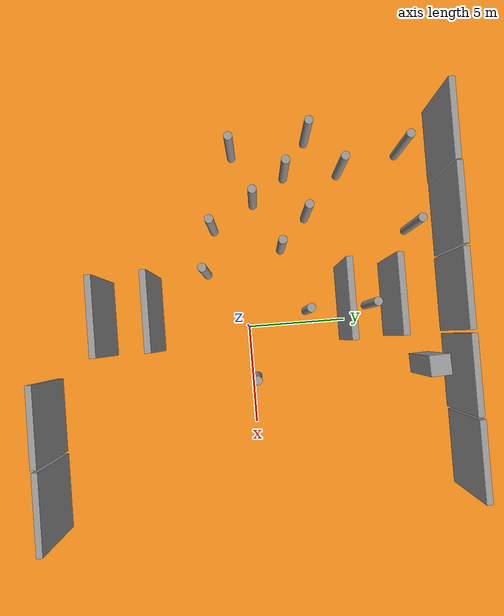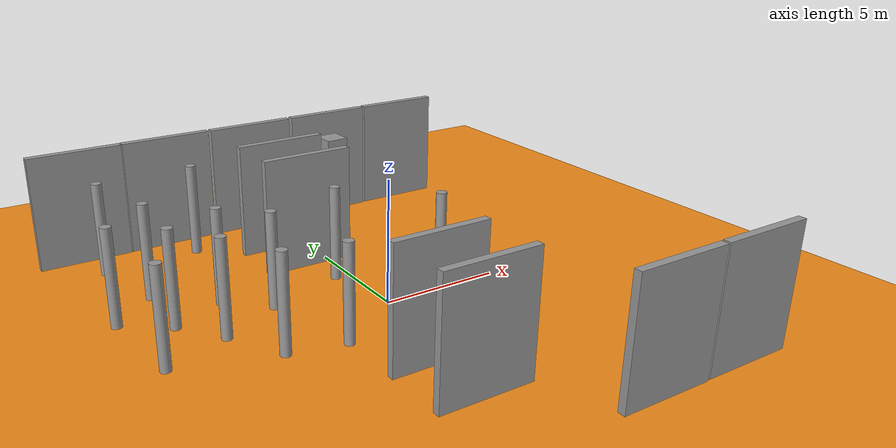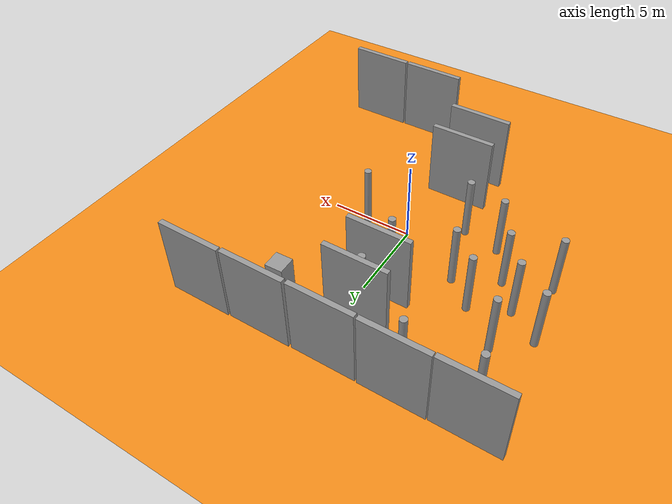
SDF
<sdf version="1.7">
 <world name="default">
  <model name="ground_plane">
   <static>1</static>
   <link name="link">
    <collision name="collision">
     <geometry><plane><normal>0 0 1</normal><size>100 100</size></plane></geometry>
     <surface>
      <contact><collide_bitmask>65535</collide_bitmask></contact>
      <friction><ode><mu>100</mu><mu2>50</mu2></ode></friction>
     </surface>
    </collision>
    <visual name="visual">
     <cast_shadows>0</cast_shadows>
     <geometry><plane><normal>0 0 1</normal><size>100 100</size></plane></geometry>
     <material>
      <script><uri>file://media/materials/scripts/gazebo.material</uri><name>Gazebo/Orange</name></script>
     </material>
    </visual>
   </link>
  </model>
  <model name="unit_box_clone">
   <pose>2.56438 8.80406 2.03247 -1e-06 0 0.031763</pose>
   <link name="link">
    <inertial>
     <mass>1</mass>
     <inertia>
      <ixx>0.166667</ixx>
      <ixy>0</ixy>
      <ixz>0</ixz>
      <iyy>0.166667</iyy>
      <iyz>0</iyz>
      <izz>0.166667</izz>
     </inertia>
    </inertial>
    <collision name="collision"><geometry><box><size>1 1 4.06493</size></box></geometry></collision>
    <visual name="visual">
     <geometry><box><size>1 1 4.06493</size></box></geometry>
     <material>
      <script><name>Gazebo/Grey</name><uri>file://media/materials/scripts/gazebo.material</uri></script>
     </material>
    </visual>
   </link>
  </model>
  <model name="unit_cylinder_clone_clone_clone">
   <pose>-7.67669 2.38458 1.97903 0 0 -1.69956</pose>
   <link name="link">
    <inertial>
     <mass>1</mass>
     <inertia><ixx>0.145833</ixx><ixy>0</ixy><ixz>0</ixz><iyy>0.145833</iyy><iyz>0</iyz><izz>0.125</izz></inertia>
    </inertial>
    <collision name="collision">
     <geometry><cylinder><radius>0.213223</radius><length>3.95805</length></cylinder></geometry>
    </collision>
    <visual name="visual">
     <geometry><cylinder><radius>0.213223</radius><length>3.95805</length></cylinder></geometry>
     <material>
      <script><name>Gazebo/Grey</name><uri>file://media/materials/scripts/gazebo.material</uri></script>
     </material>
    </visual>
   </link>
  </model>
  <model name="unit_cylinder_clone_clone_clone_clone">
   <pose>-6.39711 0.681458 1.97903 -0 -0 -1.70515</pose>
   <link name="link">
    <inertial>
     <mass>1</mass>
     <inertia><ixx>0.145833</ixx><ixy>0</ixy><ixz>0</ixz><iyy>0.145833</iyy><iyz>0</iyz><izz>0.125</izz></inertia>
    </inertial>
    <collision name="collision">
     <geometry><cylinder><radius>0.213223</radius><length>3.95805</length></cylinder></geometry>
    </collision>
    <visual name="visual">
     <geometry><cylinder><radius>0.213223</radius><length>3.95805</length></cylinder></geometry>
     <material>
      <script><name>Gazebo/Grey</name><uri>file://media/materials/scripts/gazebo.material</uri></script>
     </material>
    </visual>
   </link>
  </model>
  <model name="unit_cylinder_clone_clone_clone_clone_0">
   <pose>-9.00069 -0.258997 1.97903 -0 -0 -1.69717</pose>
   <link name="link">
    <inertial>
     <mass>1</mass>
     <inertia><ixx>0.145833</ixx><ixy>0</ixy><ixz>0</ixz><iyy>0.145833</iyy><iyz>0</iyz><izz>0.125</izz></inertia>
    </inertial>
    <collision name="collision">
     <geometry><cylinder><radius>0.213223</radius><length>3.95805</length></cylinder></geometry>
    </collision>
    <visual name="visual">
     <geometry><cylinder><radius>0.213223</radius><length>3.95805</length></cylinder></geometry>
     <material>
      <script><name>Gazebo/Grey</name><uri>file://media/materials/scripts/gazebo.material</uri></script>
     </material>
    </visual>
   </link>
  </model>
  <model name="unit_cylinder_clone_clone_clone_clone_2">
   <pose>-5.14202 -1.45678 1.97903 -0 -0 -1.72159</pose>
   <link name="link">
    <inertial>
     <mass>1</mass>
     <inertia><ixx>0.145833</ixx><ixy>0</ixy><ixz>0</ixz><iyy>0.145833</iyy><iyz>0</iyz><izz>0.125</izz></inertia>
    </inertial>
    <collision name="collision">
     <geometry><cylinder><radius>0.213223</radius><length>3.95805</length></cylinder></geometry>
    </collision>
    <visual name="visual">
     <geometry><cylinder><radius>0.213223</radius><length>3.95805</length></cylinder></geometry>
     <material>
      <script><name>Gazebo/Grey</name><uri>file://media/materials/scripts/gazebo.material</uri></script>
     </material>
    </visual>
   </link>
  </model>
  <model name="unit_cylinder_clone_clone_clone_clone_3">
   <pose>-5.47204 3.34587 1.97903 0 0 -1.70507</pose>
   <link name="link">
    <inertial>
     <mass>1</mass>
     <inertia><ixx>0.145833</ixx><ixy>0</ixy><ixz>0</ixz><iyy>0.145833</iyy><iyz>0</iyz><izz>0.125</izz></inertia>
    </inertial>
    <collision name="collision">
     <geometry><cylinder><radius>0.213223</radius><length>3.95805</length></cylinder></geometry>
    </collision>
    <visual name="visual">
     <geometry><cylinder><radius>0.213223</radius><length>3.95805</length></cylinder></geometry>
     <material>
      <script><name>Gazebo/Grey</name><uri>file://media/materials/scripts/gazebo.material</uri></script>
     </material>
    </visual>
   </link>
  </model>
  <model name="unit_cylinder_clone_clone_clone_clone_4">
   <pose>-9.46678 3.62466 1.97901 0 0 -1.70303</pose>
   <link name="link">
    <inertial>
     <mass>1</mass>
     <inertia><ixx>0.145833</ixx><ixy>0</ixy><ixz>0</ixz><iyy>0.145833</iyy><iyz>0</iyz><izz>0.125</izz></inertia>
    </inertial>
    <collision name="collision">
     <geometry><cylinder><radius>0.213223</radius><length>3.95805</length></cylinder></geometry>
    </collision>
    <visual name="visual">
     <geometry><cylinder><radius>0.213223</radius><length>3.95805</length></cylinder></geometry>
     <material>
      <script><name>Gazebo/Grey</name><uri>file://media/materials/scripts/gazebo.material</uri></script>
     </material>
    </visual>
   </link>
  </model>
  <model name="unit_cylinder_clone_clone_clone_clone_3_clone_2">
   <pose>-0.64246 6.18951 1.97903 -0 -0 -1.70582</pose>
   <link name="link">
    <inertial>
     <mass>1</mass>
     <inertia><ixx>0.145833</ixx><ixy>0</ixy><ixz>0</ixz><iyy>0.145833</iyy><iyz>0</iyz><izz>0.125</izz></inertia>
    </inertial>
    <collision name="collision">
     <geometry><cylinder><radius>0.213223</radius><length>3.95805</length></cylinder></geometry>
    </collision>
    <visual name="visual">
     <geometry><cylinder><radius>0.213223</radius><length>3.95805</length></cylinder></geometry>
     <material>
      <script><name>Gazebo/Grey</name><uri>file://media/materials/scripts/gazebo.material</uri></script>
     </material>
    </visual>
   </link>
  </model>
  <model name="unit_cylinder_clone_clone_clone_clone_3_clone_3">
   <pose>-7.62376 5.22535 1.97901 0 0 -1.70526</pose>
   <link name="link">
    <inertial>
     <mass>1</mass>
     <inertia><ixx>0.145833</ixx><ixy>0</ixy><ixz>0</ixz><iyy>0.145833</iyy><iyz>0</iyz><izz>0.125</izz></inertia>
    </inertial>
    <collision name="collision">
     <geometry><cylinder><radius>0.213223</radius><length>3.95805</length></cylinder></geometry>
    </collision>
    <visual name="visual">
     <geometry><cylinder><radius>0.213223</radius><length>3.95805</length></cylinder></geometry>
     <material>
      <script><name>Gazebo/Grey</name><uri>file://media/materials/scripts/gazebo.material</uri></script>
     </material>
    </visual>
   </link>
  </model>
  <model name="unit_cylinder_clone_clone_clone_clone_3_clone_6">
   <pose>-3.89432 1.95072 1.97901 -0 -0 -1.70617</pose>
   <link name="link">
    <inertial>
     <mass>1</mass>
     <inertia><ixx>0.145833</ixx><ixy>0</ixy><ixz>0</ixz><iyy>0.145833</iyy><iyz>0</iyz><izz>0.125</izz></inertia>
    </inertial>
    <collision name="collision">
     <geometry><cylinder><radius>0.213223</radius><length>3.95805</length></cylinder></geometry>
    </collision>
    <visual name="visual">
     <geometry><cylinder><radius>0.213223</radius><length>3.95805</length></cylinder></geometry>
     <material>
      <script><name>Gazebo/Grey</name><uri>file://media/materials/scripts/gazebo.material</uri></script>
     </material>
    </visual>
   </link>
  </model>
  <model name="Wall1">
   <link name="link_1">
    <inertial>
     <mass>5.76087</mass>
     <inertia><ixx>18.5128</ixx><ixy>0</ixy><ixz>0</ixz><iyy>11.4896</iyy><iyz>0</iyz><izz>7.11389</izz></inertia>
    </inertial>
    <pose>-0.387698 -7.91676 -1e-06 0 -0 1.56704</pose>
    <visual name="visual">
     <geometry><box><size>0.30743 3.83717 4.88248</size></box></geometry>
     <material>
      <lighting>1</lighting>
      <script><uri>file://media/materials/scripts/gazebo.material</uri><name>Gazebo/Grey</name></script>
      <shader type="pixel"/>
     </material>
    </visual>
    <collision name="collision">
     <geometry><box><size>0.30743 3.83717 4.88248</size></box></geometry>
     <surface>
      <friction>
       <ode><mu>1</mu><mu2>1</mu2><fdir1>0 0 0</fdir1><slip1>0</slip1><slip2>0</slip2></ode>
       <torsional>
        <coefficient>1</coefficient>
        <patch_radius>0</patch_radius>
        <surface_radius>0</surface_radius>
        <use_patch_radius>1</use_patch_radius>
        <ode><slip>0</slip></ode>
       </torsional>
      </friction>
      <bounce><restitution_coefficient>0</restitution_coefficient><threshold>1e+06</threshold></bounce>
      <contact>
       <collide_without_contact>0</collide_without_contact>
       <collide_without_contact_bitmask>1</collide_without_contact_bitmask>
       <collide_bitmask>1</collide_bitmask>
       <ode>
        <soft_cfm>0</soft_cfm>
        <soft_erp>0.2</soft_erp>
        <kp>1e+13</kp>
        <kd>1</kd>
        <max_vel>0.01</max_vel>
        <min_depth>0</min_depth>
       </ode>
       <bullet>
        <split_impulse>1</split_impulse>
        <split_impulse_penetration_threshold>-0.01</split_impulse_penetration_threshold>
        <soft_cfm>0</soft_cfm>
        <soft_erp>0.2</soft_erp>
        <kp>1e+13</kp>
        <kd>1</kd>
       </bullet>
      </contact>
     </surface>
    </collision>
   </link>
   <static>1</static>
   <pose>-0.497116 15.1009 2.43363 0 -0 0</pose>
  </model>
  <model name="Wall1_clone">
   <link name="link_1">
    <inertial>
     <mass>5.76087</mass>
     <inertia><ixx>18.5128</ixx><ixy>0</ixy><ixz>0</ixz><iyy>11.4896</iyy><iyz>0</iyz><izz>7.11389</izz></inertia>
    </inertial>
    <pose>-0.387698 -7.91676 -1e-06 0 -0 1.56704</pose>
    <visual name="visual">
     <geometry><box><size>0.30743 3.83717 4.88248</size></box></geometry>
     <material>
      <lighting>1</lighting>
      <script><uri>file://media/materials/scripts/gazebo.material</uri><name>Gazebo/Grey</name></script>
      <shader type="pixel"/>
     </material>
    </visual>
    <collision name="collision">
     <geometry><box><size>0.30743 3.83717 4.88248</size></box></geometry>
     <surface>
      <friction>
       <ode><mu>1</mu><mu2>1</mu2><fdir1>0 0 0</fdir1><slip1>0</slip1><slip2>0</slip2></ode>
       <torsional>
        <coefficient>1</coefficient>
        <patch_radius>0</patch_radius>
        <surface_radius>0</surface_radius>
        <use_patch_radius>1</use_patch_radius>
        <ode><slip>0</slip></ode>
       </torsional>
      </friction>
      <bounce><restitution_coefficient>0</restitution_coefficient><threshold>1e+06</threshold></bounce>
      <contact>
       <collide_without_contact>0</collide_without_contact>
       <collide_without_contact_bitmask>1</collide_without_contact_bitmask>
       <collide_bitmask>1</collide_bitmask>
       <ode>
        <soft_cfm>0</soft_cfm>
        <soft_erp>0.2</soft_erp>
        <kp>1e+13</kp>
        <kd>1</kd>
        <max_vel>0.01</max_vel>
        <min_depth>0</min_depth>
       </ode>
       <bullet>
        <split_impulse>1</split_impulse>
        <split_impulse_penetration_threshold>-0.01</split_impulse_penetration_threshold>
        <soft_cfm>0</soft_cfm>
        <soft_erp>0.2</soft_erp>
        <kp>1e+13</kp>
        <kd>1</kd>
       </bullet>
      </contact>
     </surface>
    </collision>
   </link>
   <static>1</static>
   <pose>-0.461552 12.7661 2.43363 0 -0 0</pose>
  </model>
  <model name="Wall1_clone_clone">
   <link name="link_1">
    <inertial>
     <mass>5.76087</mass>
     <inertia><ixx>18.5128</ixx><ixy>0</ixy><ixz>0</ixz><iyy>11.4896</iyy><iyz>0</iyz><izz>7.11389</izz></inertia>
    </inertial>
    <pose>-0.387698 -7.91676 -1e-06 0 -0 1.56704</pose>
    <visual name="visual">
     <geometry><box><size>0.30743 3.83717 4.88248</size></box></geometry>
     <material>
      <lighting>1</lighting>
      <script><uri>file://media/materials/scripts/gazebo.material</uri><name>Gazebo/Grey</name></script>
      <shader type="pixel"/>
     </material>
    </visual>
    <collision name="collision">
     <geometry><box><size>0.30743 3.83717 4.88248</size></box></geometry>
     <surface>
      <friction>
       <ode><mu>1</mu><mu2>1</mu2><fdir1>0 0 0</fdir1><slip1>0</slip1><slip2>0</slip2></ode>
       <torsional>
        <coefficient>1</coefficient>
        <patch_radius>0</patch_radius>
        <surface_radius>0</surface_radius>
        <use_patch_radius>1</use_patch_radius>
        <ode><slip>0</slip></ode>
       </torsional>
      </friction>
      <bounce><restitution_coefficient>0</restitution_coefficient><threshold>1e+06</threshold></bounce>
      <contact>
       <collide_without_contact>0</collide_without_contact>
       <collide_without_contact_bitmask>1</collide_without_contact_bitmask>
       <collide_bitmask>1</collide_bitmask>
       <ode>
        <soft_cfm>0</soft_cfm>
        <soft_erp>0.2</soft_erp>
        <kp>1e+13</kp>
        <kd>1</kd>
        <max_vel>0.01</max_vel>
        <min_depth>0</min_depth>
       </ode>
       <bullet>
        <split_impulse>1</split_impulse>
        <split_impulse_penetration_threshold>-0.01</split_impulse_penetration_threshold>
        <soft_cfm>0</soft_cfm>
        <soft_erp>0.2</soft_erp>
        <kp>1e+13</kp>
        <kd>1</kd>
       </bullet>
      </contact>
     </surface>
    </collision>
   </link>
   <static>1</static>
   <pose>-0.602663 3.29935 2.43363 0 -0 0</pose>
  </model>
  <model name="Wall1_clone_clone_0">
   <link name="link_1">
    <inertial>
     <mass>5.76087</mass>
     <inertia><ixx>18.5128</ixx><ixy>0</ixy><ixz>0</ixz><iyy>11.4896</iyy><iyz>0</iyz><izz>7.11389</izz></inertia>
    </inertial>
    <pose>-0.387698 -7.91676 -1e-06 0 -0 1.56704</pose>
    <visual name="visual">
     <geometry><box><size>0.30743 3.83717 4.88248</size></box></geometry>
     <material>
      <lighting>1</lighting>
      <script><uri>file://media/materials/scripts/gazebo.material</uri><name>Gazebo/Grey</name></script>
      <shader type="pixel"/>
     </material>
    </visual>
    <collision name="collision">
     <geometry><box><size>0.30743 3.83717 4.88248</size></box></geometry>
     <surface>
      <friction>
       <ode><mu>1</mu><mu2>1</mu2><fdir1>0 0 0</fdir1><slip1>0</slip1><slip2>0</slip2></ode>
       <torsional>
        <coefficient>1</coefficient>
        <patch_radius>0</patch_radius>
        <surface_radius>0</surface_radius>
        <use_patch_radius>1</use_patch_radius>
        <ode><slip>0</slip></ode>
       </torsional>
      </friction>
      <bounce><restitution_coefficient>0</restitution_coefficient><threshold>1e+06</threshold></bounce>
      <contact>
       <collide_without_contact>0</collide_without_contact>
       <collide_without_contact_bitmask>1</collide_without_contact_bitmask>
       <collide_bitmask>1</collide_bitmask>
       <ode>
        <soft_cfm>0</soft_cfm>
        <soft_erp>0.2</soft_erp>
        <kp>1e+13</kp>
        <kd>1</kd>
        <max_vel>0.01</max_vel>
        <min_depth>0</min_depth>
       </ode>
       <bullet>
        <split_impulse>1</split_impulse>
        <split_impulse_penetration_threshold>-0.01</split_impulse_penetration_threshold>
        <soft_cfm>0</soft_cfm>
        <soft_erp>0.2</soft_erp>
        <kp>1e+13</kp>
        <kd>1</kd>
       </bullet>
      </contact>
     </surface>
    </collision>
   </link>
   <static>1</static>
   <pose>-0.56094 0.77903 2.43363 0 -0 0</pose>
  </model>
  <model name="Wall1_clone_clone_0_clone">
   <link name="link_1">
    <inertial>
     <mass>5.76087</mass>
     <inertia><ixx>18.5128</ixx><ixy>0</ixy><ixz>0</ixz><iyy>11.4896</iyy><iyz>0</iyz><izz>7.11389</izz></inertia>
    </inertial>
    <pose>-0.387698 -7.91676 -1e-06 0 -0 1.56704</pose>
    <visual name="visual">
     <geometry><box><size>0.30743 3.83717 4.88248</size></box></geometry>
     <material>
      <lighting>1</lighting>
      <script><uri>file://media/materials/scripts/gazebo.material</uri><name>Gazebo/Grey</name></script>
      <shader type="pixel"/>
     </material>
    </visual>
    <collision name="collision">
     <geometry><box><size>0.30743 3.83717 4.88248</size></box></geometry>
     <surface>
      <friction>
       <ode><mu>1</mu><mu2>1</mu2><fdir1>0 0 0</fdir1><slip1>0</slip1><slip2>0</slip2></ode>
       <torsional>
        <coefficient>1</coefficient>
        <patch_radius>0</patch_radius>
        <surface_radius>0</surface_radius>
        <use_patch_radius>1</use_patch_radius>
        <ode><slip>0</slip></ode>
       </torsional>
      </friction>
      <bounce><restitution_coefficient>0</restitution_coefficient><threshold>1e+06</threshold></bounce>
      <contact>
       <collide_without_contact>0</collide_without_contact>
       <collide_without_contact_bitmask>1</collide_without_contact_bitmask>
       <collide_bitmask>1</collide_bitmask>
       <ode>
        <soft_cfm>0</soft_cfm>
        <soft_erp>0.2</soft_erp>
        <kp>1e+13</kp>
        <kd>1</kd>
        <max_vel>0.01</max_vel>
        <min_depth>0</min_depth>
       </ode>
       <bullet>
        <split_impulse>1</split_impulse>
        <split_impulse_penetration_threshold>-0.01</split_impulse_penetration_threshold>
        <soft_cfm>0</soft_cfm>
        <soft_erp>0.2</soft_erp>
        <kp>1e+13</kp>
        <kd>1</kd>
       </bullet>
      </contact>
     </surface>
    </collision>
   </link>
   <static>1</static>
   <pose>8.20978 -2.23264 2.43363 0 -0 0</pose>
  </model>
  <model name="Wall1_clone_clone_0_clone_0">
   <link name="link_1">
    <inertial>
     <mass>5.76087</mass>
     <inertia><ixx>18.5128</ixx><ixy>0</ixy><ixz>0</ixz><iyy>11.4896</iyy><iyz>0</iyz><izz>7.11389</izz></inertia>
    </inertial>
    <pose>-0.387698 -7.91676 -1e-06 0 -0 1.56704</pose>
    <visual name="visual">
     <geometry><box><size>0.30743 3.83717 4.88248</size></box></geometry>
     <material>
      <lighting>1</lighting>
      <script><uri>file://media/materials/scripts/gazebo.material</uri><name>Gazebo/Grey</name></script>
      <shader type="pixel"/>
     </material>
    </visual>
    <collision name="collision">
     <geometry><box><size>0.30743 3.83717 4.88248</size></box></geometry>
     <surface>
      <friction>
       <ode><mu>1</mu><mu2>1</mu2><fdir1>0 0 0</fdir1><slip1>0</slip1><slip2>0</slip2></ode>
       <torsional>
        <coefficient>1</coefficient>
        <patch_radius>0</patch_radius>
        <surface_radius>0</surface_radius>
        <use_patch_radius>1</use_patch_radius>
        <ode><slip>0</slip></ode>
       </torsional>
      </friction>
      <bounce><restitution_coefficient>0</restitution_coefficient><threshold>1e+06</threshold></bounce>
      <contact>
       <collide_without_contact>0</collide_without_contact>
       <collide_without_contact_bitmask>1</collide_without_contact_bitmask>
       <collide_bitmask>1</collide_bitmask>
       <ode>
        <soft_cfm>0</soft_cfm>
        <soft_erp>0.2</soft_erp>
        <kp>1e+13</kp>
        <kd>1</kd>
        <max_vel>0.01</max_vel>
        <min_depth>0</min_depth>
       </ode>
       <bullet>
        <split_impulse>1</split_impulse>
        <split_impulse_penetration_threshold>-0.01</split_impulse_penetration_threshold>
        <soft_cfm>0</soft_cfm>
        <soft_erp>0.2</soft_erp>
        <kp>1e+13</kp>
        <kd>1</kd>
       </bullet>
      </contact>
     </surface>
    </collision>
   </link>
   <static>1</static>
   <pose>4.25681 -2.24694 2.43363 0 -0 0</pose>
  </model>
  <model name="Wall1_clone_clone_0_clone_4">
   <link name="link_1">
    <inertial>
     <mass>5.76087</mass>
     <inertia><ixx>18.5128</ixx><ixy>0</ixy><ixz>0</ixz><iyy>11.4896</iyy><iyz>0</iyz><izz>7.11389</izz></inertia>
    </inertial>
    <pose>-0.387698 -7.91676 -1e-06 0 -0 1.56704</pose>
    <visual name="visual">
     <geometry><box><size>0.30743 3.83717 4.88248</size></box></geometry>
     <material>
      <lighting>1</lighting>
      <script><uri>file://media/materials/scripts/gazebo.material</uri><name>Gazebo/Grey</name></script>
      <shader type="pixel"/>
     </material>
    </visual>
    <collision name="collision">
     <geometry><box><size>0.30743 3.83717 4.88248</size></box></geometry>
     <surface>
      <friction>
       <ode><mu>1</mu><mu2>1</mu2><fdir1>0 0 0</fdir1><slip1>0</slip1><slip2>0</slip2></ode>
       <torsional>
        <coefficient>1</coefficient>
        <patch_radius>0</patch_radius>
        <surface_radius>0</surface_radius>
        <use_patch_radius>1</use_patch_radius>
        <ode><slip>0</slip></ode>
       </torsional>
      </friction>
      <bounce><restitution_coefficient>0</restitution_coefficient><threshold>1e+06</threshold></bounce>
      <contact>
       <collide_without_contact>0</collide_without_contact>
       <collide_without_contact_bitmask>1</collide_without_contact_bitmask>
       <collide_bitmask>1</collide_bitmask>
       <ode>
        <soft_cfm>0</soft_cfm>
        <soft_erp>0.2</soft_erp>
        <kp>1e+13</kp>
        <kd>1</kd>
        <max_vel>0.01</max_vel>
        <min_depth>0</min_depth>
       </ode>
       <bullet>
        <split_impulse>1</split_impulse>
        <split_impulse_penetration_threshold>-0.01</split_impulse_penetration_threshold>
        <soft_cfm>0</soft_cfm>
        <soft_erp>0.2</soft_erp>
        <kp>1e+13</kp>
        <kd>1</kd>
       </bullet>
      </contact>
     </surface>
    </collision>
   </link>
   <static>1</static>
   <pose>-0.514783 18.1292 2.43363 0 -0 0</pose>
  </model>
  <model name="Wall1_clone_clone_0_clone_5">
   <link name="link_1">
    <inertial>
     <mass>5.76087</mass>
     <inertia><ixx>18.5128</ixx><ixy>0</ixy><ixz>0</ixz><iyy>11.4896</iyy><iyz>0</iyz><izz>7.11389</izz></inertia>
    </inertial>
    <pose>-0.387698 -7.91676 -1e-06 0 -0 1.56704</pose>
    <visual name="visual">
     <geometry><box><size>0.30743 3.83717 4.88248</size></box></geometry>
     <material>
      <lighting>1</lighting>
      <script><uri>file://media/materials/scripts/gazebo.material</uri><name>Gazebo/Grey</name></script>
      <shader type="pixel"/>
     </material>
    </visual>
    <collision name="collision">
     <geometry><box><size>0.30743 3.83717 4.88248</size></box></geometry>
     <surface>
      <friction>
       <ode><mu>1</mu><mu2>1</mu2><fdir1>0 0 0</fdir1><slip1>0</slip1><slip2>0</slip2></ode>
       <torsional>
        <coefficient>1</coefficient>
        <patch_radius>0</patch_radius>
        <surface_radius>0</surface_radius>
        <use_patch_radius>1</use_patch_radius>
        <ode><slip>0</slip></ode>
       </torsional>
      </friction>
      <bounce><restitution_coefficient>0</restitution_coefficient><threshold>1e+06</threshold></bounce>
      <contact>
       <collide_without_contact>0</collide_without_contact>
       <collide_without_contact_bitmask>1</collide_without_contact_bitmask>
       <collide_bitmask>1</collide_bitmask>
       <ode>
        <soft_cfm>0</soft_cfm>
        <soft_erp>0.2</soft_erp>
        <kp>1e+13</kp>
        <kd>1</kd>
        <max_vel>0.01</max_vel>
        <min_depth>0</min_depth>
       </ode>
       <bullet>
        <split_impulse>1</split_impulse>
        <split_impulse_penetration_threshold>-0.01</split_impulse_penetration_threshold>
        <soft_cfm>0</soft_cfm>
        <soft_erp>0.2</soft_erp>
        <kp>1e+13</kp>
        <kd>1</kd>
       </bullet>
      </contact>
     </surface>
    </collision>
   </link>
   <static>1</static>
   <pose>-4.47115 18.1661 2.43363 0 -0 0</pose>
  </model>
  <model name="Wall1_clone_clone_0_clone_6">
   <link name="link_1">
    <inertial>
     <mass>5.76087</mass>
     <inertia><ixx>18.5128</ixx><ixy>0</ixy><ixz>0</ixz><iyy>11.4896</iyy><iyz>0</iyz><izz>7.11389</izz></inertia>
    </inertial>
    <pose>-0.387698 -7.91676 -1e-06 0 -0 1.56704</pose>
    <visual name="visual">
     <geometry><box><size>0.30743 3.83717 4.88248</size></box></geometry>
     <material>
      <lighting>1</lighting>
      <script><uri>file://media/materials/scripts/gazebo.material</uri><name>Gazebo/Grey</name></script>
      <shader type="pixel"/>
     </material>
    </visual>
    <collision name="collision">
     <geometry><box><size>0.30743 3.83717 4.88248</size></box></geometry>
     <surface>
      <friction>
       <ode><mu>1</mu><mu2>1</mu2><fdir1>0 0 0</fdir1><slip1>0</slip1><slip2>0</slip2></ode>
       <torsional>
        <coefficient>1</coefficient>
        <patch_radius>0</patch_radius>
        <surface_radius>0</surface_radius>
        <use_patch_radius>1</use_patch_radius>
        <ode><slip>0</slip></ode>
       </torsional>
      </friction>
      <bounce><restitution_coefficient>0</restitution_coefficient><threshold>1e+06</threshold></bounce>
      <contact>
       <collide_without_contact>0</collide_without_contact>
       <collide_without_contact_bitmask>1</collide_without_contact_bitmask>
       <collide_bitmask>1</collide_bitmask>
       <ode>
        <soft_cfm>0</soft_cfm>
        <soft_erp>0.2</soft_erp>
        <kp>1e+13</kp>
        <kd>1</kd>
        <max_vel>0.01</max_vel>
        <min_depth>0</min_depth>
       </ode>
       <bullet>
        <split_impulse>1</split_impulse>
        <split_impulse_penetration_threshold>-0.01</split_impulse_penetration_threshold>
        <soft_cfm>0</soft_cfm>
        <soft_erp>0.2</soft_erp>
        <kp>1e+13</kp>
        <kd>1</kd>
       </bullet>
      </contact>
     </surface>
    </collision>
   </link>
   <static>1</static>
   <pose>-8.36558 18.1446 2.43363 0 -0 0</pose>
  </model>
  <model name="Wall1_clone_clone_0_clone_7">
   <link name="link_1">
    <inertial>
     <mass>5.76087</mass>
     <inertia><ixx>18.5128</ixx><ixy>0</ixy><ixz>0</ixz><iyy>11.4896</iyy><iyz>0</iyz><izz>7.11389</izz></inertia>
    </inertial>
    <pose>-0.387698 -7.91676 -1e-06 0 -0 1.56704</pose>
    <visual name="visual">
     <geometry><box><size>0.30743 3.83717 4.88248</size></box></geometry>
     <material>
      <lighting>1</lighting>
      <script><uri>file://media/materials/scripts/gazebo.material</uri><name>Gazebo/Grey</name></script>
      <shader type="pixel"/>
     </material>
    </visual>
    <collision name="collision">
     <geometry><box><size>0.30743 3.83717 4.88248</size></box></geometry>
     <surface>
      <friction>
       <ode><mu>1</mu><mu2>1</mu2><fdir1>0 0 0</fdir1><slip1>0</slip1><slip2>0</slip2></ode>
       <torsional>
        <coefficient>1</coefficient>
        <patch_radius>0</patch_radius>
        <surface_radius>0</surface_radius>
        <use_patch_radius>1</use_patch_radius>
        <ode><slip>0</slip></ode>
       </torsional>
      </friction>
      <bounce><restitution_coefficient>0</restitution_coefficient><threshold>1e+06</threshold></bounce>
      <contact>
       <collide_without_contact>0</collide_without_contact>
       <collide_without_contact_bitmask>1</collide_without_contact_bitmask>
       <collide_bitmask>1</collide_bitmask>
       <ode>
        <soft_cfm>0</soft_cfm>
        <soft_erp>0.2</soft_erp>
        <kp>1e+13</kp>
        <kd>1</kd>
        <max_vel>0.01</max_vel>
        <min_depth>0</min_depth>
       </ode>
       <bullet>
        <split_impulse>1</split_impulse>
        <split_impulse_penetration_threshold>-0.01</split_impulse_penetration_threshold>
        <soft_cfm>0</soft_cfm>
        <soft_erp>0.2</soft_erp>
        <kp>1e+13</kp>
        <kd>1</kd>
       </bullet>
      </contact>
     </surface>
    </collision>
   </link>
   <static>1</static>
   <pose>3.47326 18.1482 2.43363 0 -0 0</pose>
  </model>
  <model name="Wall1_clone_clone_0_clone_8">
   <link name="link_1">
    <inertial>
     <mass>5.76087</mass>
     <inertia><ixx>18.5128</ixx><ixy>0</ixy><ixz>0</ixz><iyy>11.4896</iyy><iyz>0</iyz><izz>7.11389</izz></inertia>
    </inertial>
    <pose>-0.387698 -7.91676 -1e-06 0 -0 1.56704</pose>
    <visual name="visual">
     <geometry><box><size>0.30743 3.83717 4.88248</size></box></geometry>
     <material>
      <lighting>1</lighting>
      <script><uri>file://media/materials/scripts/gazebo.material</uri><name>Gazebo/Grey</name></script>
      <shader type="pixel"/>
     </material>
    </visual>
    <collision name="collision">
     <geometry><box><size>0.30743 3.83717 4.88248</size></box></geometry>
     <surface>
      <friction>
       <ode><mu>1</mu><mu2>1</mu2><fdir1>0 0 0</fdir1><slip1>0</slip1><slip2>0</slip2></ode>
       <torsional>
        <coefficient>1</coefficient>
        <patch_radius>0</patch_radius>
        <surface_radius>0</surface_radius>
        <use_patch_radius>1</use_patch_radius>
        <ode><slip>0</slip></ode>
       </torsional>
      </friction>
      <bounce><restitution_coefficient>0</restitution_coefficient><threshold>1e+06</threshold></bounce>
      <contact>
       <collide_without_contact>0</collide_without_contact>
       <collide_without_contact_bitmask>1</collide_without_contact_bitmask>
       <collide_bitmask>1</collide_bitmask>
       <ode>
        <soft_cfm>0</soft_cfm>
        <soft_erp>0.2</soft_erp>
        <kp>1e+13</kp>
        <kd>1</kd>
        <max_vel>0.01</max_vel>
        <min_depth>0</min_depth>
       </ode>
       <bullet>
        <split_impulse>1</split_impulse>
        <split_impulse_penetration_threshold>-0.01</split_impulse_penetration_threshold>
        <soft_cfm>0</soft_cfm>
        <soft_erp>0.2</soft_erp>
        <kp>1e+13</kp>
        <kd>1</kd>
       </bullet>
      </contact>
     </surface>
    </collision>
   </link>
   <static>1</static>
   <pose>7.42496 18.1745 2.43363 0 -0 0</pose>
  </model>
  <model name="unit_cylinder_clone_clone_clone_clone_3_clone_2_clone">
   <pose>-0.588176 3.03052 1.97903 -0 -0 -1.70564</pose>
   <link name="link">
    <inertial>
     <mass>1</mass>
     <inertia><ixx>0.145833</ixx><ixy>0</ixy><ixz>0</ixz><iyy>0.145833</iyy><iyz>0</iyz><izz>0.125</izz></inertia>
    </inertial>
    <collision name="collision">
     <geometry><cylinder><radius>0.213223</radius><length>3.95805</length></cylinder></geometry>
    </collision>
    <visual name="visual">
     <geometry><cylinder><radius>0.213223</radius><length>3.95805</length></cylinder></geometry>
     <material>
      <script><name>Gazebo/Grey</name><uri>file://media/materials/scripts/gazebo.material</uri></script>
     </material>
    </visual>
   </link>
  </model>
  <model name="unit_cylinder_clone_clone_clone_clone_3_clone_2_clone_1">
   <pose>-4.42409 8.60793 1.97903 -0 -0 -1.70538</pose>
   <link name="link">
    <inertial>
     <mass>1</mass>
     <inertia><ixx>0.145833</ixx><ixy>0</ixy><ixz>0</ixz><iyy>0.145833</iyy><iyz>0</iyz><izz>0.125</izz></inertia>
    </inertial>
    <collision name="collision">
     <geometry><cylinder><radius>0.213223</radius><length>3.95805</length></cylinder></geometry>
    </collision>
    <visual name="visual">
     <geometry><cylinder><radius>0.213223</radius><length>3.95805</length></cylinder></geometry>
     <material>
      <script><name>Gazebo/Grey</name><uri>file://media/materials/scripts/gazebo.material</uri></script>
     </material>
    </visual>
   </link>
  </model>
  <model name="unit_cylinder_clone_clone_clone_clone_3_clone_2_clone_2">
   <pose>2.61395 0.259504 1.97903 -0 -0 -1.7052</pose>
   <link name="link">
    <inertial>
     <mass>1</mass>
     <inertia><ixx>0.145833</ixx><ixy>0</ixy><ixz>0</ixz><iyy>0.145833</iyy><iyz>0</iyz><izz>0.125</izz></inertia>
    </inertial>
    <collision name="collision">
     <geometry><cylinder><radius>0.213223</radius><length>3.95805</length></cylinder></geometry>
    </collision>
    <visual name="visual">
     <geometry><cylinder><radius>0.213223</radius><length>3.95805</length></cylinder></geometry>
     <material>
      <script><name>Gazebo/Grey</name><uri>file://media/materials/scripts/gazebo.material</uri></script>
     </material>
    </visual>
   </link>
  </model>
  <model name="unit_cylinder_clone_clone_clone_clone_3_clone_2_clone_3">
   <pose>-8.44645 8.39829 1.97901 0 0 -1.70578</pose>
   <link name="link">
    <inertial>
     <mass>1</mass>
     <inertia><ixx>0.145833</ixx><ixy>0</ixy><ixz>0</ixz><iyy>0.145833</iyy><iyz>0</iyz><izz>0.125</izz></inertia>
    </inertial>
    <collision name="collision">
     <geometry><cylinder><radius>0.213223</radius><length>3.95805</length></cylinder></geometry>
    </collision>
    <visual name="visual">
     <geometry><cylinder><radius>0.213223</radius><length>3.95805</length></cylinder></geometry>
     <material>
      <script><name>Gazebo/Grey</name><uri>file://media/materials/scripts/gazebo.material</uri></script>
     </material>
    </visual>
   </link>
  </model>
  <model name="unit_cylinder_clone_clone_clone_clone_3_clone_2_clone_5">
   <pose>-2.87829 -1.95229 1.97903 0 0 -1.70582</pose>
   <link name="link">
    <inertial>
     <mass>1</mass>
     <inertia><ixx>0.145833</ixx><ixy>0</ixy><ixz>0</ixz><iyy>0.145833</iyy><iyz>0</iyz><izz>0.125</izz></inertia>
    </inertial>
    <collision name="collision">
     <geometry><cylinder><radius>0.213223</radius><length>3.95805</length></cylinder></geometry>
    </collision>
    <visual name="visual">
     <geometry><cylinder><radius>0.213223</radius><length>3.95805</length></cylinder></geometry>
     <material>
      <script><name>Gazebo/Grey</name><uri>file://media/materials/scripts/gazebo.material</uri></script>
     </material>
    </visual>
   </link>
  </model>
 </world>
</sdf>
